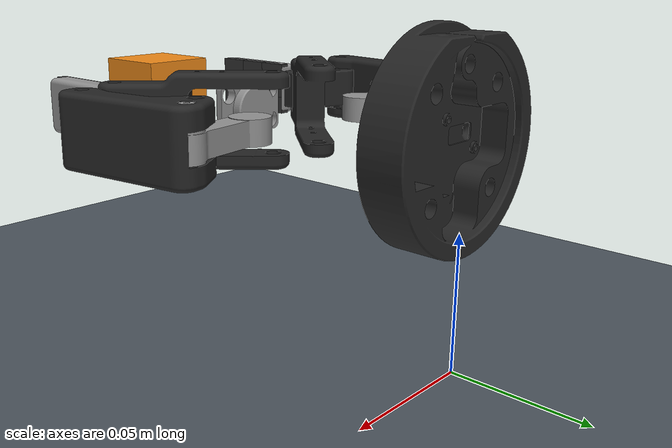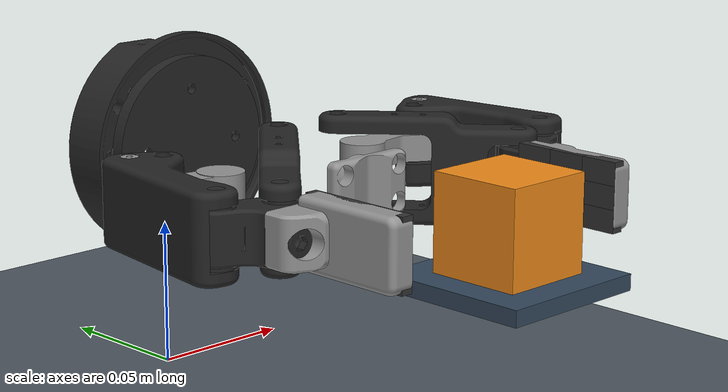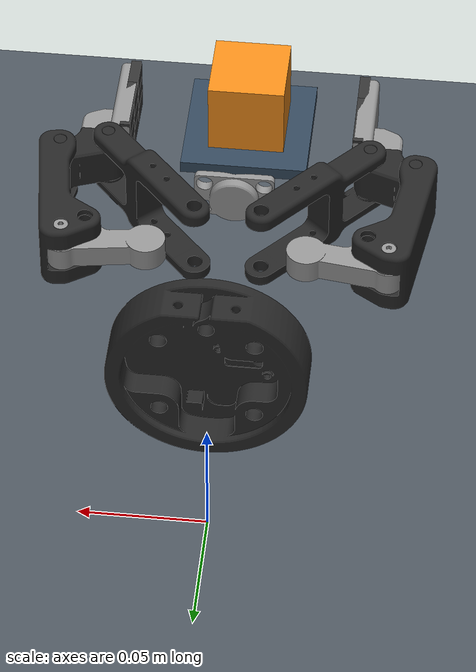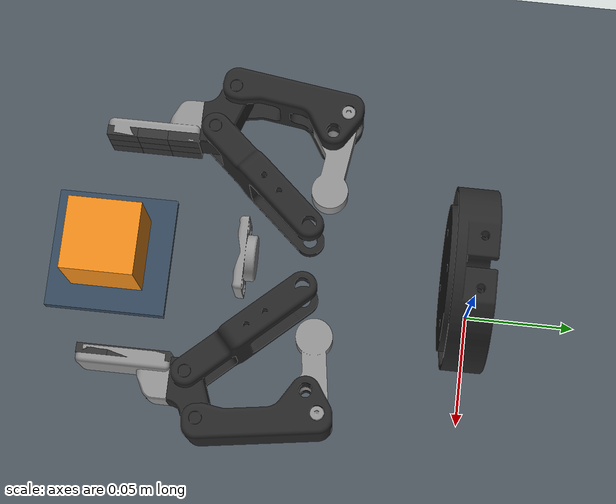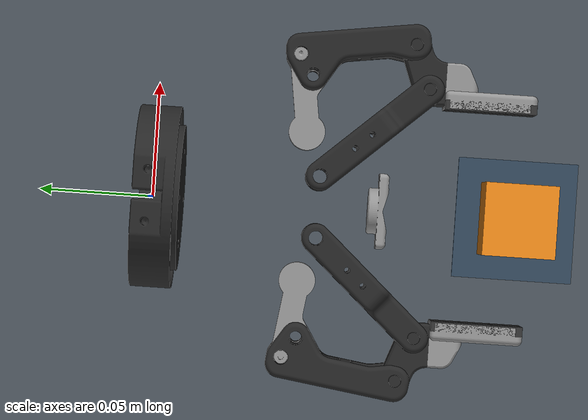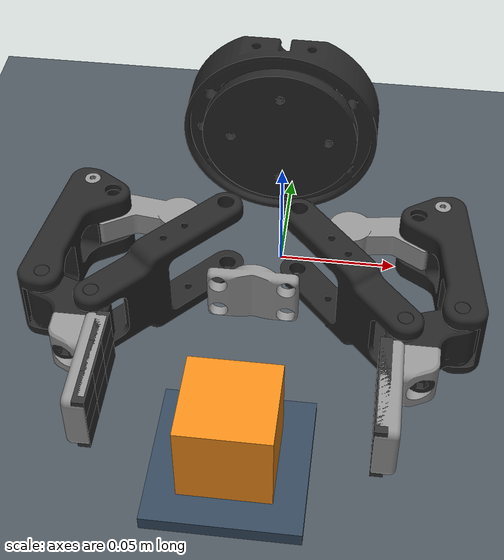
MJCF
<?xml version='1.0' encoding='utf-8'?>
<mujoco model="robotiq_2f85_cube_grasp">
  <compiler angle="radian" meshdir="../robotiq_2f85/assets" autolimits="true" />
  <option cone="elliptic" impratio="10" gravity="0 0 -9.81" timestep="0.002" integrator="implicitfast" />
  <extension>
    <plugin plugin="mujoco.sensor.touch_grid" />
  </extension>
  <size memory="128M" />
  <asset>
    <material name="metal" rgba="0.58 0.58 0.58 1" />
    <material name="silicone" rgba="0.1882 0.1882 0.1882 1" />
    <material name="black" rgba="0.149 0.149 0.149 1" />
    <mesh file="base.stl" />
    <mesh file="base_coupling.stl" />
    <mesh file="c-a01-85-open.stl" />
    <mesh file="driver.stl" />
    <mesh file="coupler.stl" />
    <mesh file="spring_link.stl" />
    <mesh file="follower.stl" />
    <mesh file="tongue.stl" />
    <texture name="ground_checker" type="2d" builtin="checker" rgb1="0.12 0.15 0.18" rgb2="0.48 0.52 0.56" width="512" height="512" />
    <texture name="starfield_skybox" type="skybox" builtin="gradient" rgb1="0.03 0.10 0.18" rgb2="0.18 0.32 0.45" width="512" mark="random" markrgb="1 1 1" random="0.008" />
    <material name="ground_checker" texture="ground_checker" texuniform="true" texrepeat="16 16" reflectance="0.15" />
  </asset>
  <default>
    <default class="2f85">
      <mesh scale="0.001 0.001 0.001" />
      <general biastype="affine" />
      <joint axis="0 0 1" />
      <default class="driver">
        <joint range="0 0.9" armature="0.005" damping="0.1" solimplimit="0.95 0.99 0.001" solreflimit="0.005 1" />
      </default>
      <default class="follower">
        <joint range="-0.872664 0.9" armature="0.001" solimplimit="0.95 0.99 0.001" solreflimit="0.005 1" />
      </default>
      <default class="spring_link">
        <joint range="-0.29670597283 0.9" armature="0.001" stiffness="0.05" springref="2.62" damping="0.00125" />
      </default>
      <default class="coupler">
        <joint range="-1.57 0" armature="0.001" solimplimit="0.95 0.99 0.001" solreflimit="0.005 1" />
      </default>
      <default class="visual">
        <geom type="mesh" contype="0" conaffinity="0" group="2" material="black" />
      </default>
      <default class="collision">
        <geom type="mesh" group="3" />
        <default class="pad_box1">
          <geom mass="1e-6" type="box" pos="0.043258  0 0.12" size="0.002 0.011 0.009375" friction="0.7" solimp="0.95 0.99 0.001" solref="0.004 1" priority="1" rgba="0.55 0.55 0.55 1" />
        </default>
        <default class="pad_box2">
          <geom mass="1e-6" type="box" pos="0.043258 0 0.13875" size="0.002 0.011 0.009375" friction="0.6" solimp="0.95 0.99 0.001" solref="0.004 1" priority="1" rgba="0.45 0.45 0.45 1" />
        </default>
      </default>
    </default>
  </default>
  <worldbody>
    <body name="base" childclass="2f85" pos="0 0 0.08" quat="0.70710678 0.70710678 0 0">
      <inertial mass="0.777441" pos="0 -2.70394e-05 0.0354675" quat="1 -0.00152849 0 0" diaginertia="0.000260285 0.000225381 0.000152708" />
      <geom class="visual" pos="0 0 0.0108" quat="0 0 0 1" mesh="base" />
      <geom class="visual" pos="0 0 0.004" quat="1 -1 0 0" mesh="base_coupling" />
      <geom class="visual" pos="0 0 0.0108" quat="1 0 0 0" material="metal" mesh="c-a01-85-open" />
      <geom class="collision" mesh="base" />
      <body name="left_driver" pos="-0.0306011 0.00475 0.0657045" quat="1 -1 0 0">
        <inertial mass="0.00899563" pos="0 0.0177547 0.00107314" quat="0.681301 0.732003 0 0" diaginertia="1.72352e-06 1.60906e-06 3.22006e-07" />
        <joint name="left_driver_joint" class="driver" />
        <geom class="visual" pos="0.0306011 0.0549045 -0.0047" quat="1 1 0 0" material="metal" mesh="driver" />
        <geom class="collision" pos="0.0306011 0.0549045 -0.0047" quat="1 1 0 0" mesh="driver" />
        <body name="left_coupler" pos="-0.0314249 0.00453223 -0.0102" quat="0 0 0 1">
          <inertial mass="0.0140974" pos="0 0.00301209 0.0232175" quat="0.705636 -0.0455904 0.0455904 0.705636" diaginertia="4.16206e-06 3.52216e-06 8.88131e-07" />
          <geom class="visual" pos="-0.062026 -0.0503723 0.0055" quat="1 -1 0 0" mesh="coupler" />
          <geom class="collision" pos="-0.062026 -0.0503723 0.0055" quat="1 -1 0 0" mesh="coupler" />
        </body>
      </body>
      <body name="left_spring_link" pos="-0.0127 -0.012 0.07222" quat="1 -1 0 0">
        <inertial mass="0.0221642" pos="-8.65005e-09 0.0181624 0.0212658" quat="0.663403 -0.244737 0.244737 0.663403" diaginertia="8.96853e-06 6.71733e-06 2.63931e-06" />
        <joint name="left_spring_link_joint" class="spring_link" />
        <geom class="visual" pos="0.0127 0.06142 0.01205" quat="1 1 0 0" type="mesh" mesh="spring_link" />
        <geom class="collision" pos="0.0127 0.06142 0.01205" quat="1 1 0 0" type="mesh" mesh="spring_link" />
        <body name="left_follower" pos="-0.0382079 -0.0425003 0.00295" quat="0 -1 -1.90231e-05 0">
          <inertial mass="0.0125222" pos="0 -0.011046 0.0124786" quat="1 0.1664 0 0" diaginertia="2.67415e-06 2.4559e-06 6.02031e-07" />
          <joint name="left_follower" class="follower" />
          <geom class="visual" pos="0.0509079 -0.10392 -0.0091" quat="1 -1 0 0" type="mesh" mesh="follower" />
          <geom class="visual" pos="0.0509079 -0.10392 -0.0091" quat="1 -1 0 0" type="mesh" material="metal" mesh="tongue" />
          <geom class="collision" pos="0.0509079 -0.10392 -0.0091" quat="1 -1 0 0" type="mesh" mesh="follower" />
          <geom class="collision" pos="0.0509079 -0.10392 -0.0091" quat="1 -1 0 0" type="mesh" mesh="tongue" />
          <body name="left_pad" pos="-0.0377897 -0.103916 -0.0091" quat="1 -1 0 0">
            <geom name="left_touch_cell_00_00" type="box" pos="0.043258 -0.007333 0.116875" size="0.002000 0.003667 0.006250" mass="1e-6" friction="0.7 0.03 0.01" solimp="0.90 0.95 0.002" solref="0.015 1" rgba="0.2 0.2 0.2 1" />
            <geom name="left_touch_cell_00_01" type="box" pos="0.043258 0.000000 0.116875" size="0.002000 0.003667 0.006250" mass="1e-6" friction="0.7 0.03 0.01" solimp="0.90 0.95 0.002" solref="0.015 1" rgba="0.2 0.2 0.2 1" />
            <geom name="left_touch_cell_00_02" type="box" pos="0.043258 0.007333 0.116875" size="0.002000 0.003667 0.006250" mass="1e-6" friction="0.7 0.03 0.01" solimp="0.90 0.95 0.002" solref="0.015 1" rgba="0.2 0.2 0.2 1" />
            <geom name="left_touch_cell_01_00" type="box" pos="0.043258 -0.007333 0.129375" size="0.002000 0.003667 0.006250" mass="1e-6" friction="0.7 0.03 0.01" solimp="0.90 0.95 0.002" solref="0.015 1" rgba="0.2 0.2 0.2 1" />
            <geom name="left_touch_cell_01_01" type="box" pos="0.043258 0.000000 0.129375" size="0.002000 0.003667 0.006250" mass="1e-6" friction="0.7 0.03 0.01" solimp="0.90 0.95 0.002" solref="0.015 1" rgba="0.2 0.2 0.2 1" />
            <geom name="left_touch_cell_01_02" type="box" pos="0.043258 0.007333 0.129375" size="0.002000 0.003667 0.006250" mass="1e-6" friction="0.7 0.03 0.01" solimp="0.90 0.95 0.002" solref="0.015 1" rgba="0.2 0.2 0.2 1" />
            <geom name="left_touch_cell_02_00" type="box" pos="0.043258 -0.007333 0.141875" size="0.002000 0.003667 0.006250" mass="1e-6" friction="0.7 0.03 0.01" solimp="0.90 0.95 0.002" solref="0.015 1" rgba="0.2 0.2 0.2 1" />
            <geom name="left_touch_cell_02_01" type="box" pos="0.043258 0.000000 0.141875" size="0.002000 0.003667 0.006250" mass="1e-6" friction="0.7 0.03 0.01" solimp="0.90 0.95 0.002" solref="0.015 1" rgba="0.2 0.2 0.2 1" />
            <geom name="left_touch_cell_02_02" type="box" pos="0.043258 0.007333 0.141875" size="0.002000 0.003667 0.006250" mass="1e-6" friction="0.7 0.03 0.01" solimp="0.90 0.95 0.002" solref="0.015 1" rgba="0.2 0.2 0.2 1" />
            <site name="touch_left" pos="0.043258 0 0.129375" quat="1 0 -1 0" size="0.001" rgba="0 0 0 0" />
          </body>
        </body>
      </body>
      <body name="right_driver" pos="0.0306011 -0.00475 0.0657045" quat="0 0 -1 1">
        <inertial mass="0.00899563" pos="2.96931e-12 0.0177547 0.00107314" quat="0.681301 0.732003 0 0" diaginertia="1.72352e-06 1.60906e-06 3.22006e-07" />
        <joint name="right_driver_joint" class="driver" />
        <geom class="visual" pos="0.0306011 0.0549045 -0.0047" quat="1 1 0 0" material="metal" mesh="driver" />
        <geom class="collision" pos="0.0306011 0.0549045 -0.0047" quat="1 1 0 0" mesh="driver" />
        <body name="right_coupler" pos="-0.0314249 0.00453223 -0.0102" quat="0 0 0 1">
          <inertial mass="0.0140974" pos="0 0.00301209 0.0232175" quat="0.705636 -0.0455904 0.0455904 0.705636" diaginertia="4.16206e-06 3.52216e-06 8.88131e-07" />
          <geom class="visual" pos="-0.062026 -0.0503723 0.0055" quat="1 -1 0 0" mesh="coupler" />
          <geom class="collision" pos="-0.062026 -0.0503723 0.0055" quat="1 -1 0 0" mesh="coupler" />
        </body>
      </body>
      <body name="right_spring_link" pos="0.0127 0.012 0.07222" quat="0 0 -1 1">
        <inertial mass="0.0221642" pos="-8.65005e-09 0.0181624 0.0212658" quat="0.663403 -0.244737 0.244737 0.663403" diaginertia="8.96853e-06 6.71733e-06 2.63931e-06" />
        <joint name="right_spring_link_joint" class="spring_link" />
        <geom class="visual" pos="0.0127 0.06142 0.01205" quat="1 1 0 0" mesh="spring_link" />
        <geom class="collision" pos="0.0127 0.06142 0.01205" quat="1 1 0 0" mesh="spring_link" />
        <body name="right_follower" pos="-0.0382079 -0.0425003 0.00295" quat="0 -1 0 0">
          <inertial mass="0.0125222" pos="0 -0.011046 0.0124786" quat="1 0.1664 0 0" diaginertia="2.67415e-06 2.4559e-06 6.02031e-07" />
          <joint name="right_follower_joint" class="follower" />
          <geom class="visual" pos="0.0509079 -0.10392 -0.0091" quat="1 -1 0 0" material="metal" mesh="tongue" />
          <geom class="visual" pos="0.0509079 -0.10392 -0.0091" quat="1 -1 0 0" mesh="follower" />
          <geom class="collision" pos="0.0509079 -0.10392 -0.0091" quat="1 -1 0 0" mesh="tongue" />
          <geom class="collision" pos="0.0509079 -0.10392 -0.0091" quat="1 -1 0 0" mesh="follower" />
          <body name="right_pad" pos="-0.0377897 -0.103916 -0.0091" quat="1 -1 0 0">
            <geom name="right_touch_cell_00_00" type="box" pos="0.043258 -0.007333 0.116875" size="0.002000 0.003667 0.006250" mass="1e-6" friction="0.7 0.03 0.01" solimp="0.90 0.95 0.002" solref="0.015 1" rgba="0.2 0.2 0.2 1" />
            <geom name="right_touch_cell_00_01" type="box" pos="0.043258 0.000000 0.116875" size="0.002000 0.003667 0.006250" mass="1e-6" friction="0.7 0.03 0.01" solimp="0.90 0.95 0.002" solref="0.015 1" rgba="0.2 0.2 0.2 1" />
            <geom name="right_touch_cell_00_02" type="box" pos="0.043258 0.007333 0.116875" size="0.002000 0.003667 0.006250" mass="1e-6" friction="0.7 0.03 0.01" solimp="0.90 0.95 0.002" solref="0.015 1" rgba="0.2 0.2 0.2 1" />
            <geom name="right_touch_cell_01_00" type="box" pos="0.043258 -0.007333 0.129375" size="0.002000 0.003667 0.006250" mass="1e-6" friction="0.7 0.03 0.01" solimp="0.90 0.95 0.002" solref="0.015 1" rgba="0.2 0.2 0.2 1" />
            <geom name="right_touch_cell_01_01" type="box" pos="0.043258 0.000000 0.129375" size="0.002000 0.003667 0.006250" mass="1e-6" friction="0.7 0.03 0.01" solimp="0.90 0.95 0.002" solref="0.015 1" rgba="0.2 0.2 0.2 1" />
            <geom name="right_touch_cell_01_02" type="box" pos="0.043258 0.007333 0.129375" size="0.002000 0.003667 0.006250" mass="1e-6" friction="0.7 0.03 0.01" solimp="0.90 0.95 0.002" solref="0.015 1" rgba="0.2 0.2 0.2 1" />
            <geom name="right_touch_cell_02_00" type="box" pos="0.043258 -0.007333 0.141875" size="0.002000 0.003667 0.006250" mass="1e-6" friction="0.7 0.03 0.01" solimp="0.90 0.95 0.002" solref="0.015 1" rgba="0.2 0.2 0.2 1" />
            <geom name="right_touch_cell_02_01" type="box" pos="0.043258 0.000000 0.141875" size="0.002000 0.003667 0.006250" mass="1e-6" friction="0.7 0.03 0.01" solimp="0.90 0.95 0.002" solref="0.015 1" rgba="0.2 0.2 0.2 1" />
            <geom name="right_touch_cell_02_02" type="box" pos="0.043258 0.007333 0.141875" size="0.002000 0.003667 0.006250" mass="1e-6" friction="0.7 0.03 0.01" solimp="0.90 0.95 0.002" solref="0.015 1" rgba="0.2 0.2 0.2 1" />
            <site name="touch_right" pos="0.043258 0 0.129375" quat="1 0 -1 0" size="0.001" rgba="0 0 0 0" />
          </body>
        </body>
      </body>
    </body>
    <geom name="ground" type="plane" size="0 0 0.05" material="ground_checker" friction="0.9 0.02 0.001" />
    <geom name="target_cube_support_plate" type="box" pos="0 -0.155 0.0625" size="0.025 0.025 0.0025" friction="0.9 0.02 0.001" solimp="0.90 0.95 0.002" solref="0.015 1" rgba="0.20 0.28 0.36 1" />
    <light pos="0 -0.3 0.5" directional="true" dir="0 0.5 -1" />
    <camera name="grasp_overview" pos="0.28 -0.35 0.22" xyaxes="0.78 0.62 0  -0.30 0.38 0.87" />
    <body name="target_cube" pos="0 -0.155 0.08">
      <freejoint name="target_cube_free_joint" />
      <geom name="target_cube_geom" type="box" size="0.015 0.015 0.015" mass="0.03" friction="0.8 0.02 0.001" solimp="0.90 0.95 0.002" solref="0.015 1" rgba="0.95 0.55 0.1 1" />
    </body>
  </worldbody>
  <contact>
    <exclude body1="base" body2="left_driver" />
    <exclude body1="base" body2="right_driver" />
    <exclude body1="base" body2="left_spring_link" />
    <exclude body1="base" body2="right_spring_link" />
    <exclude body1="right_coupler" body2="right_follower" />
    <exclude body1="left_coupler" body2="left_follower" />
  </contact>
  <tendon>
    <fixed name="split">
      <joint joint="right_driver_joint" coef="0.485" />
      <joint joint="left_driver_joint" coef="0.485" />
    </fixed>
  </tendon>
  <equality>
    <connect anchor="-0.0179014 -0.00651468 0.0044" body1="right_follower" body2="right_coupler" solimp="0.95 0.99 0.001" solref="0.005 1" />
    <connect anchor="-0.0179014 -0.00651468 0.0044" body1="left_follower" body2="left_coupler" solimp="0.95 0.99 0.001" solref="0.005 1" />
    <joint joint1="right_driver_joint" joint2="left_driver_joint" polycoef="0 1 0 0 0" solimp="0.95 0.99 0.001" solref="0.005 1" />
  </equality>
  <actuator>
    <general class="2f85" name="fingers_actuator" tendon="split" forcerange="-5 5" ctrlrange="0 255" gainprm="0.3137255 0 0" biasprm="0 -100 -10" />
  </actuator>
  <sensor>
    <plugin name="touch_left" plugin="mujoco.sensor.touch_grid" objtype="site" objname="touch_left">
      <config key="size" value="3 3" />
      <config key="fov" value="23 38" />
      <config key="gamma" value="0" />
      <config key="nchannel" value="3" />
    </plugin>
    <plugin name="touch_right" plugin="mujoco.sensor.touch_grid" objtype="site" objname="touch_right">
      <config key="size" value="3 3" />
      <config key="fov" value="23 38" />
      <config key="gamma" value="0" />
      <config key="nchannel" value="3" />
    </plugin>
  </sensor>
  <keyframe>
    <key name="open" ctrl="0" />
    <key name="closed" ctrl="220" />
  </keyframe>
</mujoco>
